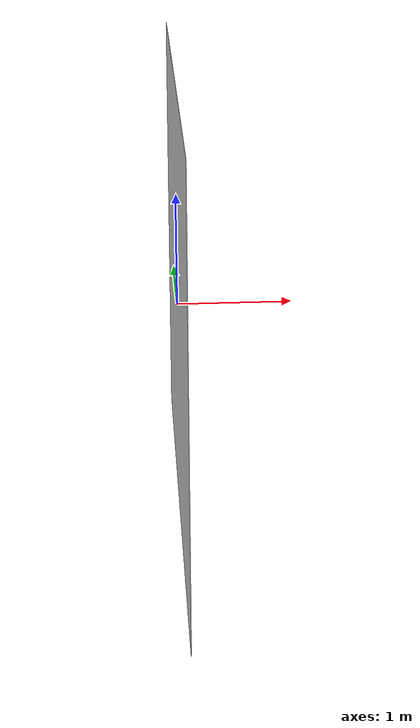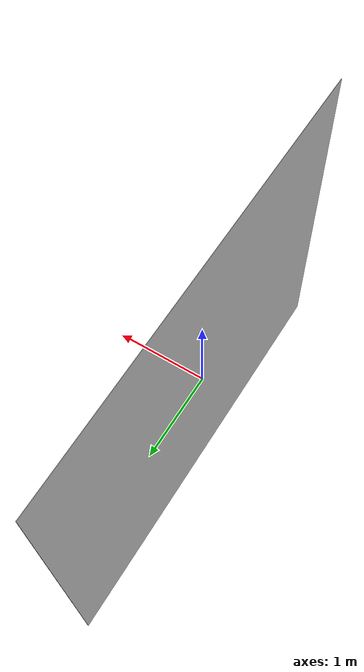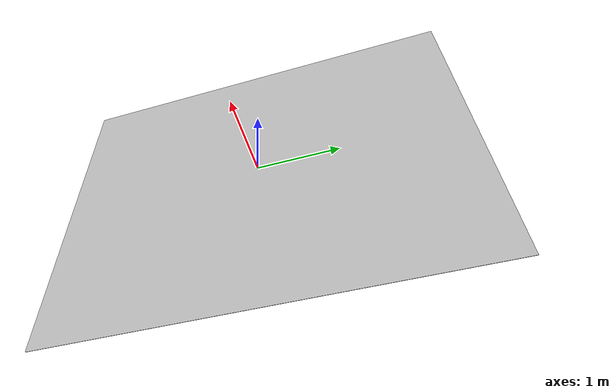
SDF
<?xml version='1.0'?>
<sdf version="1.4">
<model name="image0">
  <pose>0 0 0 0 0 0</pose>
  <static>false</static>
    <link name="link">
      <inertial>
        <mass>1.0</mass>
        <inertia> <!-- inertias are tricky to compute -->
          <!-- http://gazebosim.org/tutorials?tut=inertia&cat=build_robot -->
          <ixx>0.083</ixx>       <!-- for a box: ixx = 0.083 * mass * (y*y + z*z) -->
          <ixy>0.0</ixy>         <!-- for a box: ixy = 0 -->
          <ixz>0.0</ixz>         <!-- for a box: ixz = 0 -->
          <iyy>0.083</iyy>       <!-- for a box: iyy = 0.083 * mass * (x*x + z*z) -->
          <iyz>0.0</iyz>         <!-- for a box: iyz = 0 -->
          <izz>0.083</izz>       <!-- for a box: izz = 0.083 * mass * (x*x + y*y) -->
        </inertia>
      </inertial>
      <collision name="collision">
        <geometry>
          <box>
            <size>0.005 5 4</size>
          </box>
        </geometry>
      </collision>
      <visual name="visual">
        <geometry>
          <box>
            <size>0.005 5 4</size>
          </box>
        </geometry>
        <material>
   	 <script>
            <uri>model://images/materials/scripts</uri>
	    <uri>model://images/materials/textures</uri>
            <name>TestImages/Image0</name>
          </script>
         </material>
      </visual>
    </link>
  </model>
</sdf>
